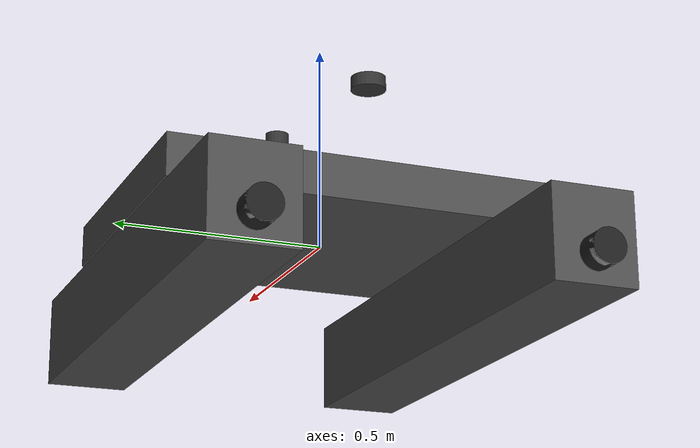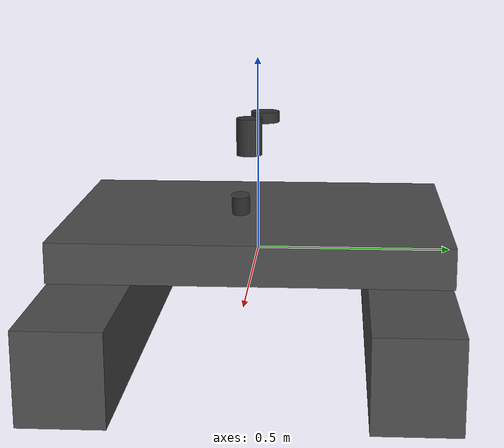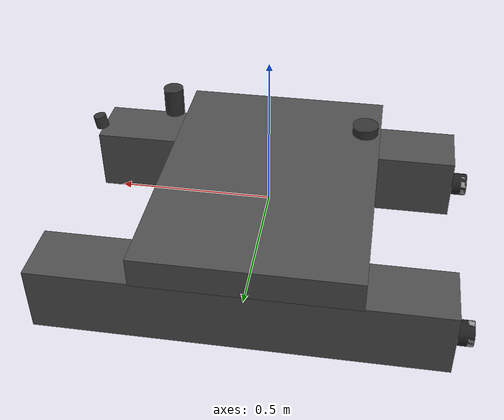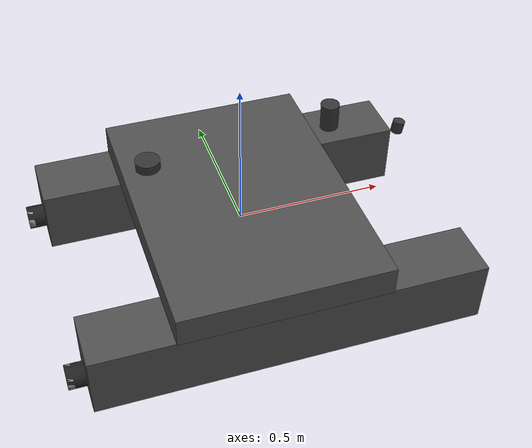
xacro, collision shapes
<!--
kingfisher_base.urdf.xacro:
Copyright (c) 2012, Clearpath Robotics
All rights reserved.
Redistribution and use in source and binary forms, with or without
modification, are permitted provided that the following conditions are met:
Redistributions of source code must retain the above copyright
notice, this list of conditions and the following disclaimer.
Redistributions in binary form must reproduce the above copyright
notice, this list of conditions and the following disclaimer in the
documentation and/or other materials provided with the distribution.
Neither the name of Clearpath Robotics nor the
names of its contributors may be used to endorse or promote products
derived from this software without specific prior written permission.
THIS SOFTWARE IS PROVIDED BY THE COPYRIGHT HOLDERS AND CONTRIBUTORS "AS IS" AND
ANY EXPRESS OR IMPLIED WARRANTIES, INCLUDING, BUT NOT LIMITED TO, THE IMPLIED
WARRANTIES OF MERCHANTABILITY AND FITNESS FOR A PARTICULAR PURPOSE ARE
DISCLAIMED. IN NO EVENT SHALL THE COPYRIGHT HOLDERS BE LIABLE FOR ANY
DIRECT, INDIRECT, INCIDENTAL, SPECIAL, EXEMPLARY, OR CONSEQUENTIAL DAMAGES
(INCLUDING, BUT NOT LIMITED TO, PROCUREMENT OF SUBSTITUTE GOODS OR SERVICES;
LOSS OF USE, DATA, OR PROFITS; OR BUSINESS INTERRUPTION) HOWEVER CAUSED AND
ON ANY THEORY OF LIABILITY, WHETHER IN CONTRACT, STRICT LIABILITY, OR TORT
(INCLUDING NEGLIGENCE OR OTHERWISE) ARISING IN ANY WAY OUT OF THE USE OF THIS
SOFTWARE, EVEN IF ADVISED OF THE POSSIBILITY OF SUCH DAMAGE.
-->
<?xml version="1.0"?>
<robot xmlns:xacro="http://ros.org/wiki/xacro" name="kingfisher">
  <xacro:include filename="$(find kingfisher_description)/urdf/kingfisher_base.urdf.xacro"/>
  <xacro:include filename="$(find kingfisher_description)/urdf/kingfisher_sensors.xacro"/>

  <!-- Deck is at z ~0.05-0.10, bow at x ~0.70 -->
  <xacro:kingfisher_lidar name="lidar" x="0.30" y="0" z="0.35"/>
  <xacro:kingfisher_camera name="camera" x="0.55" y="0" z="0.25" P="${radians(10)}"/>
  <xacro:kingfisher_gps name="gps" x="-0.30" y="0" z="0.30"/>
  <xacro:kingfisher_imu name="imu" x="0" y="0" z="0.05"/>
</robot>

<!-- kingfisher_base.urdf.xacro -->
<robot xmlns:xacro="http://ros.org/wiki/xacro" name="kingfisher">
  <xacro:include filename="$(find kingfisher_description)/urdf/materials.urdf.xacro"/>
  <xacro:include filename="$(find kingfisher_description)/urdf/kingfisher_thruster.xacro"/>

  <!-- === Physical parameters (tunable) === -->
  <!-- Total mass including payload/sensors, from the IsaacLab kingfisher env. -->
  <xacro:property name="kf_mass" value="35.0"/>
  <xacro:property name="kf_com_z" value="-0.05"/>
  <!-- Box approximation of a 35 kg, 1.34 x 0.97 x 0.32 m body. -->
  <xacro:property name="kf_ixx" value="3.0"/>
  <xacro:property name="kf_iyy" value="5.5"/>
  <xacro:property name="kf_izz" value="8.0"/>
  <!-- Hull geometry used for the collision boxes. -->
  <xacro:property name="kf_hull_length" value="1.3"/>
  <xacro:property name="kf_hull_width" value="0.2"/>
  <xacro:property name="kf_hull_height" value="0.22"/>
  <xacro:property name="kf_hull_y" value="0.38"/>
  <!-- Jet thruster location (stern of each hull, just above the keel). -->
  <xacro:property name="kf_thruster_x" value="-0.60"/>
  <xacro:property name="kf_thruster_y" value="0.38"/>
  <xacro:property name="kf_thruster_z" value="-0.15"/>

  <link name="base_link">
    <!-- Hull mesh. The STL is modelled y-up / x-right, hence the rotation. -->
    <visual name="hull_visual">
      <origin xyz="0 0 0" rpy="${pi/2} 0 ${pi/2}"/>
      <geometry>
        <mesh filename="package://kingfisher_description/meshes/kingfisher_base.stl"/>
      </geometry>
      <material name="DarkGray"/>
    </visual>
    <visual name="left_panel_visual">
      <origin xyz="0 -0.35 0.05" rpy="${pi/2} 0 ${pi/2}"/>
      <geometry>
        <mesh filename="package://kingfisher_description/meshes/left_panel.stl"/>
      </geometry>
      <material name="Yellow"/>
    </visual>
    <visual name="right_panel_visual">
      <origin xyz="0 0.35 0.05" rpy="${pi/2} 0 ${-pi/2}"/>
      <geometry>
        <mesh filename="package://kingfisher_description/meshes/right_panel.stl"/>
      </geometry>
      <material name="Yellow"/>
    </visual>

    <!-- Primitive collisions: one box per hull plus the deck. -->
    <collision name="left_hull_collision">
      <origin xyz="0.03 ${kf_hull_y} ${-kf_hull_height/2}" rpy="0 0 0"/>
      <geometry>
        <box size="${kf_hull_length} ${kf_hull_width} ${kf_hull_height}"/>
      </geometry>
    </collision>
    <collision name="right_hull_collision">
      <origin xyz="0.03 ${-kf_hull_y} ${-kf_hull_height/2}" rpy="0 0 0"/>
      <geometry>
        <box size="${kf_hull_length} ${kf_hull_width} ${kf_hull_height}"/>
      </geometry>
    </collision>
    <collision name="deck_collision">
      <origin xyz="0 0 0.05" rpy="0 0 0"/>
      <geometry>
        <box size="0.7 0.97 0.1"/>
      </geometry>
    </collision>

    <inertial>
      <mass value="${kf_mass}"/>
      <origin xyz="0 0 ${kf_com_z}" rpy="0 0 0"/>
      <inertia ixx="${kf_ixx}" ixy="0" ixz="0" iyy="${kf_iyy}" iyz="0" izz="${kf_izz}"/>
    </inertial>
  </link>

  <!-- === Thrusters (fixed, differential) === -->
  <xacro:kingfisher_thruster prefix="left"
    position="${kf_thruster_x} ${kf_thruster_y} ${kf_thruster_z}"/>
  <xacro:kingfisher_thruster prefix="right"
    position="${kf_thruster_x} ${-kf_thruster_y} ${kf_thruster_z}"/>
</robot>

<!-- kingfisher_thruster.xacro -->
<robot xmlns:xacro="http://ros.org/wiki/xacro">
  <xacro:macro name="kingfisher_thruster" params="prefix position:='0 0 0' orientation:='0 0 0'">
    <xacro:property name="housing_radius" value="0.04"/>
    <xacro:property name="housing_length" value="0.16"/>
    <xacro:property name="housing_mass" value="0.5"/>
    <xacro:property name="prop_radius" value="0.04"/>
    <xacro:property name="prop_length" value="0.02"/>
    <xacro:property name="prop_mass" value="0.05"/>

    <!-- Housing (jet drive tube), aligned with the x axis -->
    <link name="${prefix}_thruster_link">
      <visual name="${prefix}_thruster_visual">
        <origin xyz="0 0 0" rpy="0 ${pi/2} 0"/>
        <geometry>
          <cylinder radius="${housing_radius}" length="${housing_length}"/>
        </geometry>
        <material name="Black"/>
      </visual>
      <collision name="${prefix}_thruster_collision">
        <origin xyz="0 0 0" rpy="0 ${pi/2} 0"/>
        <geometry>
          <cylinder radius="${housing_radius}" length="${housing_length}"/>
        </geometry>
      </collision>
      <inertial>
        <mass value="${housing_mass}"/>
        <inertia
          ixx="${(housing_mass/2) * housing_radius*housing_radius}"
          iyy="${(housing_mass/12) * (3*housing_radius*housing_radius + housing_length*housing_length)}"
          izz="${(housing_mass/12) * (3*housing_radius*housing_radius + housing_length*housing_length)}"
          ixy="0" ixz="0" iyz="0"/>
      </inertial>
    </link>

    <joint name="${prefix}_base_thruster_joint" type="fixed">
      <origin xyz="${position}" rpy="${orientation}"/>
      <parent link="base_link"/>
      <child link="${prefix}_thruster_link"/>
    </joint>

    <!-- Propeller / impeller, spins about x -->
    <link name="${prefix}_propeller_link">
      <visual name="${prefix}_propeller_visual">
        <origin xyz="0 0 0" rpy="0 ${pi/2} 0"/>
        <geometry>
          <cylinder radius="${prop_radius}" length="${prop_length}"/>
        </geometry>
        <material name="Gray"/>
      </visual>
      <collision name="${prefix}_propeller_collision">
        <origin xyz="0 0 0" rpy="0 ${pi/2} 0"/>
        <geometry>
          <cylinder radius="${prop_radius}" length="${prop_length}"/>
        </geometry>
      </collision>
      <inertial>
        <mass value="${prop_mass}"/>
        <inertia
          ixx="${(prop_mass/2) * prop_radius*prop_radius}"
          iyy="${(prop_mass/12) * (3*prop_radius*prop_radius + prop_length*prop_length)}"
          izz="${(prop_mass/12) * (3*prop_radius*prop_radius + prop_length*prop_length)}"
          ixy="0" ixz="0" iyz="0"/>
      </inertial>
    </link>

    <joint name="${prefix}_engine_propeller_joint" type="continuous">
      <axis xyz="1 0 0"/>
      <origin xyz="-0.07 0 0" rpy="0 0 0"/>
      <parent link="${prefix}_thruster_link"/>
      <child link="${prefix}_propeller_link"/>
      <!-- The Thruster plugin commands ~200 rad/s at full thrust; keep the limit above that -->
      <limit effort="100" velocity="1000"/>
      <dynamics friction="0.05" damping="0.05"/>
    </joint>
  </xacro:macro>
</robot>

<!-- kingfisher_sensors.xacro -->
<robot xmlns:xacro="http://ros.org/wiki/xacro">

  <xacro:macro name="kingfisher_sensor_link" params="name xyz rpy radius length mass color:='0.2 0.2 0.2 1.0'">
    <link name="${name}_link">
      <visual name="${name}_visual">
        <geometry>
          <cylinder radius="${radius}" length="${length}"/>
        </geometry>
        <material name="${name}_visual_material">
          <color rgba="${color}"/>
        </material>
      </visual>
      <collision name="${name}_collision">
        <geometry>
          <cylinder radius="${radius}" length="${length}"/>
        </geometry>
      </collision>
      <inertial>
        <mass value="${mass}"/>
        <inertia
          ixx="${(mass/12) * (3*radius*radius + length*length)}"
          iyy="${(mass/12) * (3*radius*radius + length*length)}"
          izz="${(mass/2) * radius*radius}"
          ixy="0" ixz="0" iyz="0"/>
      </inertial>
    </link>
    <joint name="${name}_joint" type="fixed">
      <origin xyz="${xyz}" rpy="${rpy}"/>
      <parent link="base_link"/>
      <child link="${name}_link"/>
    </joint>
  </xacro:macro>

  <xacro:macro name="kingfisher_gps" params="name:=gps x:=0 y:=0 z:=0 R:=0 P:=0 Y:=0">
    <xacro:kingfisher_sensor_link name="${name}" xyz="${x} ${y} ${z}" rpy="${R} ${P} ${Y}"
                                  radius="0.04" length="0.03" mass="0.2"/>
  </xacro:macro>

  <xacro:macro name="kingfisher_imu" params="name:=imu x:=0 y:=0 z:=0 R:=0 P:=0 Y:=0">
    <xacro:kingfisher_sensor_link name="${name}" xyz="${x} ${y} ${z}" rpy="${R} ${P} ${Y}"
                                  radius="0.02" length="0.01" mass="0.05"/>
  </xacro:macro>

  <!-- 2D lidar, sized as a SICK TiM571 -->
  <xacro:macro name="kingfisher_lidar" params="name:=lidar x:=0 y:=0 z:=0 R:=0 P:=0 Y:=0">
    <xacro:kingfisher_sensor_link name="${name}" xyz="${x} ${y} ${z}" rpy="${R} ${P} ${Y}"
                                  radius="0.03" length="0.086" mass="0.25"/>
  </xacro:macro>

  <xacro:macro name="kingfisher_camera" params="name:=camera x:=0 y:=0 z:=0 R:=0 P:=0 Y:=0">
    <xacro:kingfisher_sensor_link name="${name}" xyz="${x} ${y} ${z}" rpy="${R} ${P} ${Y}"
                                  radius="0.02" length="0.04" mass="0.1"/>
    <link name="${name}_link_optical"/>
    <joint name="${name}_optical_joint" type="fixed">
      <origin xyz="0 0 0" rpy="${-pi/2} 0 ${-pi/2}"/>
      <parent link="${name}_link"/>
      <child link="${name}_link_optical"/>
    </joint>
  </xacro:macro>
</robot>
